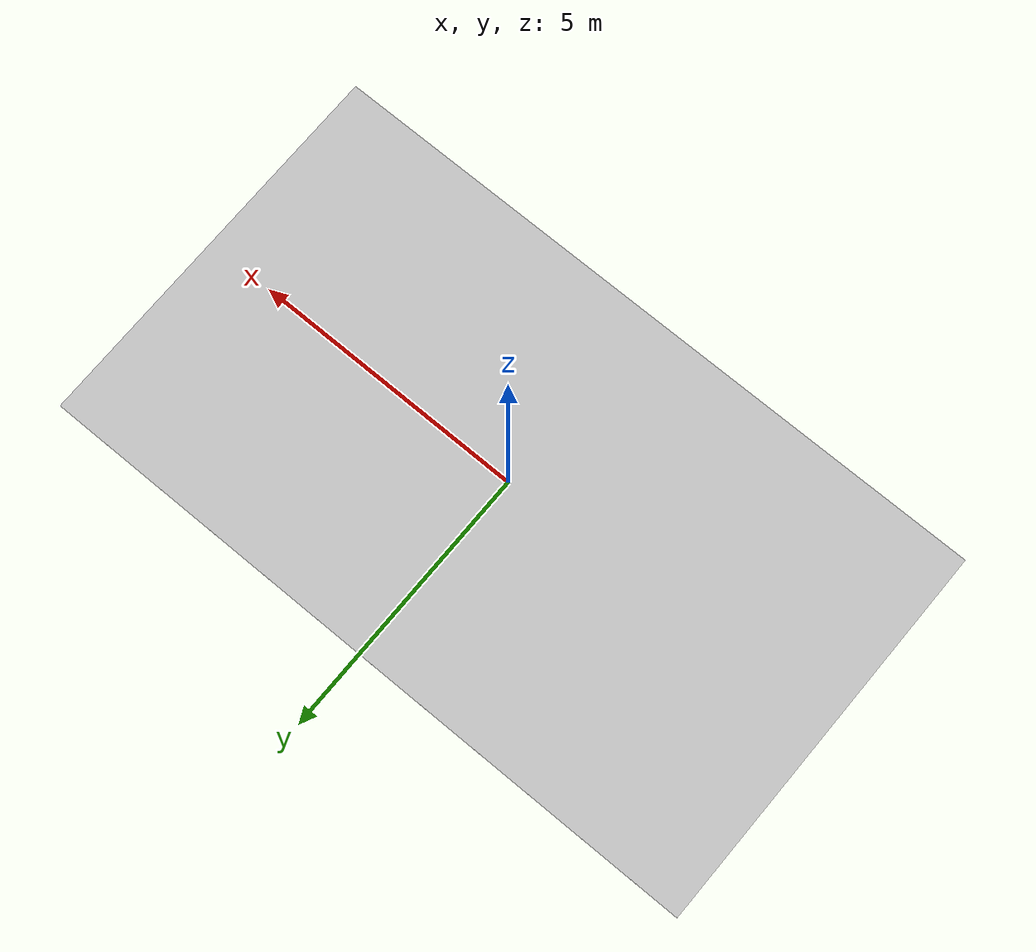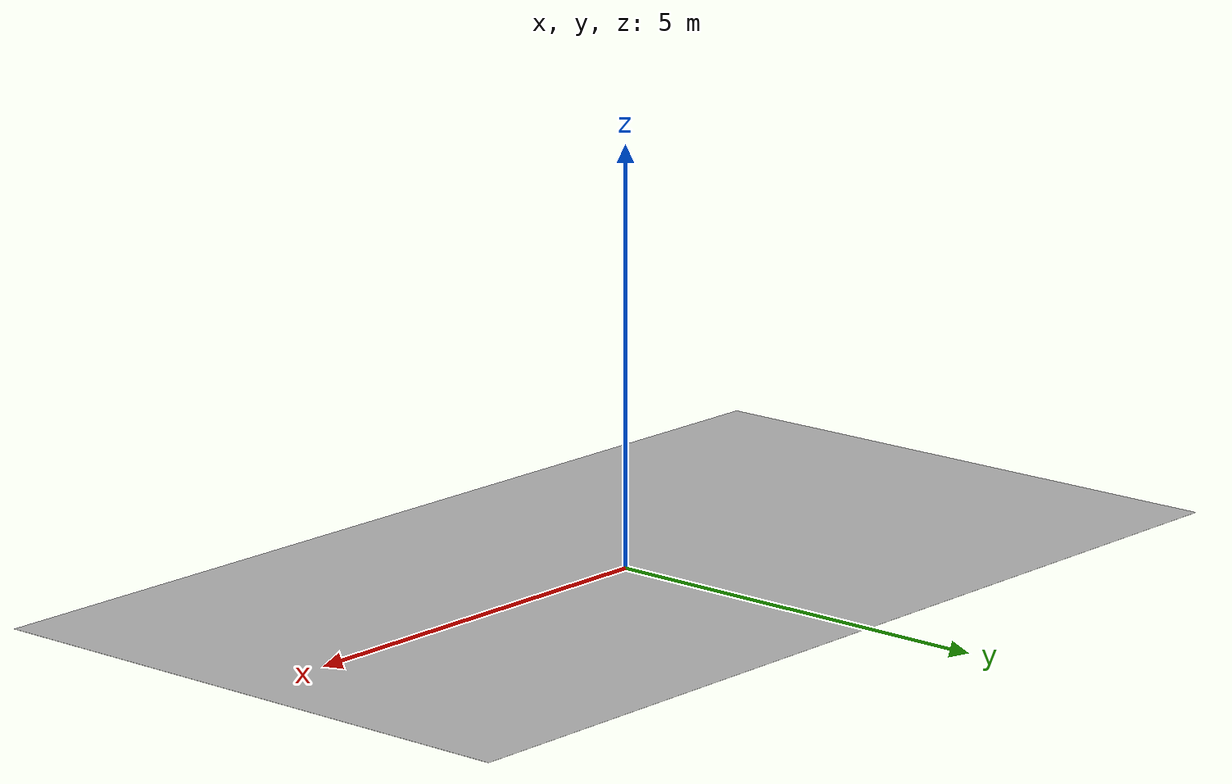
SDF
<?xml version='1.0'?>
<sdf version='1.6'>
  <model name='park'>
    <link name='body'>
      <pose frame=''>0 0 0 0 -0 0</pose>
      <self_collide>0</self_collide>
      <kinematic>0</kinematic>
      <gravity>1</gravity>
      <inertial>
        <mass>1</mass>
        <pose frame=''>0 0 0 0 -0 0</pose>
        <inertia>
          <ixx>1</ixx>
          <ixy>0</ixy>
          <ixz>0</ixz>
          <iyy>1</iyy>
          <iyz>0</iyz>
          <izz>1</izz>
        </inertia>
      </inertial>
      <visual name='visual'>
        <geometry>
          <mesh>
            <uri>file://park.dae</uri>
          </mesh>
        </geometry>
        <material>
          <shader type='pixel'>
            <normal_map>__default__</normal_map>
          </shader>
        </material>
        <pose frame=''>0 0 0 0 -0 0</pose>
        <cast_shadows>1</cast_shadows>
        <transparency>0</transparency>
      </visual>
    </link>
    <static>1</static>
    <allow_auto_disable>1</allow_auto_disable>
  </model>
</sdf>
